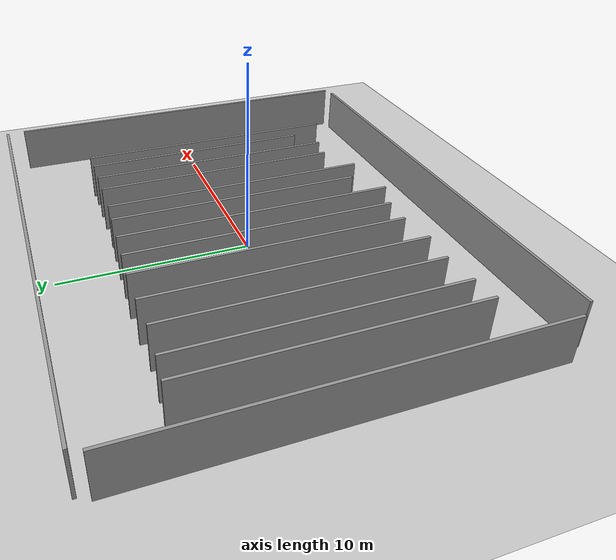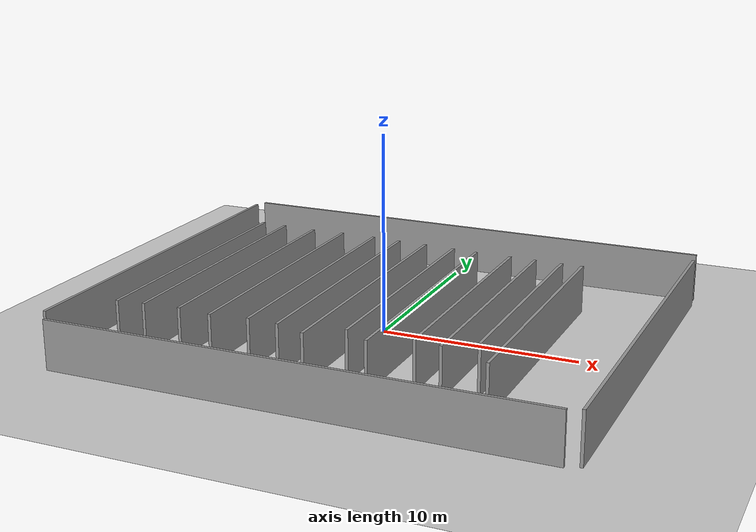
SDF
<sdf version="1.6">
 <world name="default">
  <model name="ground_plane">
   <static>1</static>
   <link name="link">
    <collision name="collision">
     <geometry><plane><normal>0 0 1</normal><size>100 100</size></plane></geometry>
     <surface><friction><ode><mu>100</mu><mu2>50</mu2></ode></friction></surface>
    </collision>
    <visual name="visual">
     <cast_shadows>0</cast_shadows>
     <geometry><plane><normal>0 0 1</normal><size>100 100</size></plane></geometry>
     <material>
      <script><uri>file://media/materials/scripts/gazebo.material</uri><name>Gazebo/Grey</name></script>
     </material>
    </visual>
   </link>
  </model>
  <model name="room15">
   <pose>0.149288 0.057 0 0 -0 0</pose>
   <link name="Wall_0">
    <collision name="Wall_0_Collision">
     <geometry><box><size>25.75 0.15 2.5</size></box></geometry>
     <pose>0 0 1.25 0 -0 0</pose>
    </collision>
    <visual name="Wall_0_Visual">
     <pose>0 0 1.25 0 -0 0</pose>
     <geometry><box><size>25.75 0.15 2.5</size></box></geometry>
     <material>
      <script><uri>file://media/materials/scripts/gazebo.material</uri><name>Gazebo/Grey</name></script>
      <ambient>1 1 1 1</ambient>
     </material>
     <meta><layer>0</layer></meta>
    </visual>
    <pose>0.089731 10.8367 0 0 -0 0</pose>
   </link>
   <link name="Wall_10">
    <collision name="Wall_10_Collision">
     <geometry><box><size>14.25 0.15 2.5</size></box></geometry>
     <pose>0 0 1.25 0 -0 0</pose>
    </collision>
    <visual name="Wall_10_Visual">
     <pose>0 0 1.25 0 -0 0</pose>
     <geometry><box><size>14.25 0.15 2.5</size></box></geometry>
     <material>
      <script><uri>file://media/materials/scripts/gazebo.material</uri><name>Gazebo/Grey</name></script>
      <ambient>1 1 1 1</ambient>
     </material>
     <meta><layer>0</layer></meta>
    </visual>
    <pose>-9.40259 -0.099252 0 0 -0 -1.5708</pose>
   </link>
   <link name="Wall_12">
    <collision name="Wall_12_Collision">
     <geometry><box><size>14 0.15 2.5</size></box></geometry>
     <pose>0 0 1.25 0 -0 0</pose>
    </collision>
    <visual name="Wall_12_Visual">
     <pose>0 0 1.25 0 -0 0</pose>
     <geometry><box><size>14 0.15 2.5</size></box></geometry>
     <material>
      <script><uri>file://media/materials/scripts/gazebo.material</uri><name>Gazebo/Grey</name></script>
      <ambient>1 1 1 1</ambient>
     </material>
     <meta><layer>0</layer></meta>
    </visual>
    <pose>-7.55214 -0.066775 0 0 -0 -1.5708</pose>
   </link>
   <link name="Wall_14">
    <collision name="Wall_14_Collision">
     <geometry><box><size>14.25 0.15 2.5</size></box></geometry>
     <pose>0 0 1.25 0 -0 0</pose>
    </collision>
    <visual name="Wall_14_Visual">
     <pose>0 0 1.25 0 -0 0</pose>
     <geometry><box><size>14.25 0.15 2.5</size></box></geometry>
     <material>
      <script><uri>file://media/materials/scripts/gazebo.material</uri><name>Gazebo/Grey</name></script>
      <ambient>1 1 1 1</ambient>
     </material>
     <meta><layer>0</layer></meta>
    </visual>
    <pose>-5.79422 -0.122383 0 0 -0 -1.5708</pose>
   </link>
   <link name="Wall_16">
    <collision name="Wall_16_Collision">
     <geometry><box><size>14 0.15 2.5</size></box></geometry>
     <pose>0 0 1.25 0 -0 0</pose>
    </collision>
    <visual name="Wall_16_Visual">
     <pose>0 0 1.25 0 -0 0</pose>
     <geometry><box><size>14 0.15 2.5</size></box></geometry>
     <material>
      <script><uri>file://media/materials/scripts/gazebo.material</uri><name>Gazebo/Grey</name></script>
      <ambient>1 1 1 1</ambient>
     </material>
     <meta><layer>0</layer></meta>
    </visual>
    <pose>-3.89751 0.002617 0 0 -0 -1.5708</pose>
   </link>
   <link name="Wall_18">
    <collision name="Wall_18_Collision">
     <geometry><box><size>14 0.15 2.5</size></box></geometry>
     <pose>0 0 1.25 0 -0 0</pose>
    </collision>
    <visual name="Wall_18_Visual">
     <pose>0 0 1.25 0 -0 0</pose>
     <geometry><box><size>14 0.15 2.5</size></box></geometry>
     <material>
      <script><uri>file://media/materials/scripts/gazebo.material</uri><name>Gazebo/Grey</name></script>
      <ambient>1 1 1 1</ambient>
     </material>
     <meta><layer>0</layer></meta>
    </visual>
    <pose>-2.34776 -0.089905 0 0 -0 -1.5708</pose>
   </link>
   <link name="Wall_2">
    <collision name="Wall_2_Collision">
     <geometry><box><size>20.5 0.15 2.5</size></box></geometry>
     <pose>0 0 1.25 0 -0 0</pose>
    </collision>
    <visual name="Wall_2_Visual">
     <pose>0 0 1.25 0 -0 0</pose>
     <geometry><box><size>20.5 0.15 2.5</size></box></geometry>
     <material>
      <script><uri>file://media/materials/scripts/gazebo.material</uri><name>Gazebo/Grey</name></script>
      <ambient>1 1 1 1</ambient>
     </material>
     <meta><layer>0</layer></meta>
    </visual>
    <pose>13.011 -0.379188 0 0 -0 -1.5708</pose>
   </link>
   <link name="Wall_20">
    <collision name="Wall_20_Collision">
     <geometry><box><size>14.5 0.15 2.5</size></box></geometry>
     <pose>0 0 1.25 0 -0 0</pose>
    </collision>
    <visual name="Wall_20_Visual">
     <pose>0 0 1.25 0 -0 0</pose>
     <geometry><box><size>14.5 0.15 2.5</size></box></geometry>
     <material>
      <script><uri>file://media/materials/scripts/gazebo.material</uri><name>Gazebo/Grey</name></script>
      <ambient>1 1 1 1</ambient>
     </material>
     <meta><layer>0</layer></meta>
    </visual>
    <pose>-0.774876 -0.409297 0 0 -0 -1.5708</pose>
   </link>
   <link name="Wall_22">
    <collision name="Wall_22_Collision">
     <geometry><box><size>13.25 0.15 2.5</size></box></geometry>
     <pose>0 0 1.25 0 -0 0</pose>
    </collision>
    <visual name="Wall_22_Visual">
     <pose>0 0 1.25 0 -0 0</pose>
     <geometry><box><size>13.25 0.15 2.5</size></box></geometry>
     <material>
      <script><uri>file://media/materials/scripts/gazebo.material</uri><name>Gazebo/Grey</name></script>
      <ambient>1 1 1 1</ambient>
     </material>
     <meta><layer>0</layer></meta>
    </visual>
    <pose>0.867398 0.12318 0 0 -0 -1.5708</pose>
   </link>
   <link name="Wall_24">
    <collision name="Wall_24_Collision">
     <geometry><box><size>14 0.15 2.5</size></box></geometry>
     <pose>0 0 1.25 0 -0 0</pose>
    </collision>
    <visual name="Wall_24_Visual">
     <pose>0 0 1.25 0 -0 0</pose>
     <geometry><box><size>14 0.15 2.5</size></box></geometry>
     <material>
      <script><uri>file://media/materials/scripts/gazebo.material</uri><name>Gazebo/Grey</name></script>
      <ambient>1 1 1 1</ambient>
     </material>
     <meta><layer>0</layer></meta>
    </visual>
    <pose>2.20897 -0.344342 0 0 -0 -1.5708</pose>
   </link>
   <link name="Wall_26">
    <collision name="Wall_26_Collision">
     <geometry><box><size>13 0.15 2.5</size></box></geometry>
     <pose>0 0 1.25 0 -0 0</pose>
    </collision>
    <visual name="Wall_26_Visual">
     <pose>0 0 1.25 0 -0 0</pose>
     <geometry><box><size>13 0.15 2.5</size></box></geometry>
     <material>
      <script><uri>file://media/materials/scripts/gazebo.material</uri><name>Gazebo/Grey</name></script>
      <ambient>1 1 1 1</ambient>
     </material>
     <meta><layer>0</layer></meta>
    </visual>
    <pose>4.10568 0.132527 0 0 -0 -1.5708</pose>
   </link>
   <link name="Wall_28">
    <collision name="Wall_28_Collision">
     <geometry><box><size>13.25 0.15 2.5</size></box></geometry>
     <pose>0 0 1.25 0 -0 0</pose>
    </collision>
    <visual name="Wall_28_Visual">
     <pose>0 0 1.25 0 -0 0</pose>
     <geometry><box><size>13.25 0.15 2.5</size></box></geometry>
     <material>
      <script><uri>file://media/materials/scripts/gazebo.material</uri><name>Gazebo/Grey</name></script>
      <ambient>1 1 1 1</ambient>
     </material>
     <meta><layer>0</layer></meta>
    </visual>
    <pose>5.47039 -0.015603 0 0 -0 -1.5708</pose>
   </link>
   <link name="Wall_30">
    <collision name="Wall_30_Collision">
     <geometry><box><size>12.25 0.15 2.5</size></box></geometry>
     <pose>0 0 1.25 0 -0 0</pose>
    </collision>
    <visual name="Wall_30_Visual">
     <pose>0 0 1.25 0 -0 0</pose>
     <geometry><box><size>12.25 0.15 2.5</size></box></geometry>
     <material>
      <script><uri>file://media/materials/scripts/gazebo.material</uri><name>Gazebo/Grey</name></script>
      <ambient>1 1 1 1</ambient>
     </material>
     <meta><layer>0</layer></meta>
    </visual>
    <pose>6.90449 0.461266 0 0 -0 -1.5708</pose>
   </link>
   <link name="Wall_32">
    <collision name="Wall_32_Collision">
     <geometry><box><size>14.25 0.15 2.5</size></box></geometry>
     <pose>0 0 1.25 0 -0 0</pose>
    </collision>
    <visual name="Wall_32_Visual">
     <pose>0 0 1.25 0 -0 0</pose>
     <geometry><box><size>14.25 0.15 2.5</size></box></geometry>
     <material>
      <script><uri>file://media/materials/scripts/gazebo.material</uri><name>Gazebo/Grey</name></script>
      <ambient>1 1 1 1</ambient>
     </material>
     <meta><layer>0</layer></meta>
    </visual>
    <pose>7.99162 -0.515603 0 0 -0 -1.5708</pose>
   </link>
   <link name="Wall_4">
    <collision name="Wall_4_Collision">
     <geometry><box><size>24.75 0.15 2.5</size></box></geometry>
     <pose>0 0 1.25 0 -0 0</pose>
    </collision>
    <visual name="Wall_4_Visual">
     <pose>0 0 1.25 0 -0 0</pose>
     <geometry><box><size>24.75 0.15 2.5</size></box></geometry>
     <material>
      <script><uri>file://media/materials/scripts/gazebo.material</uri><name>Gazebo/Grey</name></script>
      <ambient>1 1 1 1</ambient>
     </material>
     <meta><layer>0</layer></meta>
    </visual>
    <pose>-0.006082 -10.8367 0 0 -0 3.14159</pose>
   </link>
   <link name="Wall_6">
    <collision name="Wall_6_Collision">
     <geometry><box><size>20.25 0.15 2.5</size></box></geometry>
     <pose>0 0 1.25 0 -0 0</pose>
    </collision>
    <visual name="Wall_6_Visual">
     <pose>0 0 1.25 0 -0 0</pose>
     <geometry><box><size>20.25 0.15 2.5</size></box></geometry>
     <material>
      <script><uri>file://media/materials/scripts/gazebo.material</uri><name>Gazebo/Grey</name></script>
      <ambient>1 1 1 1</ambient>
     </material>
     <meta><layer>0</layer></meta>
    </visual>
    <pose>-13.011 0.162163 0 0 -0 -1.5708</pose>
   </link>
   <link name="Wall_8">
    <collision name="Wall_8_Collision">
     <geometry><box><size>14.5 0.15 2.5</size></box></geometry>
     <pose>0 0 1.25 0 -0 0</pose>
    </collision>
    <visual name="Wall_8_Visual">
     <pose>0 0 1.25 0 -0 0</pose>
     <geometry><box><size>14.5 0.15 2.5</size></box></geometry>
     <material>
      <script><uri>file://media/materials/scripts/gazebo.material</uri><name>Gazebo/Grey</name></script>
      <ambient>1 1 1 1</ambient>
     </material>
     <meta><layer>0</layer></meta>
    </visual>
    <pose>-10.7904 -0.108599 0 0 -0 -1.5708</pose>
   </link>
   <static>1</static>
  </model>
  <model name="cabinet_29">
   <static>1</static>
   <link name="cabinet_bottom_plate">
    <inertial>
     <pose>0 0 -1 0 -0 0</pose>
     <inertia><ixx>2.05</ixx><ixy>0</ixy><ixz>0</ixz><iyy>2.05</iyy><iyz>0</iyz><izz>2.05</izz></inertia>
     <mass>25</mass>
    </inertial>
    <collision name="cabinet_bottom_plate_geom">
     <pose>0 0 0.01 0 -0 0</pose>
     <geometry><box><size>0.45 0.45 0.02</size></box></geometry>
    </collision>
    <visual name="cabinet_bottom_plate_geom_visual">
     <pose>0 0 0.01 0 -0 0</pose>
     <geometry><box><size>0.45 0.45 0.02</size></box></geometry>
     <material>
      <script><uri>file://media/materials/scripts/gazebo.material</uri><name>Gazebo/Wood</name></script>
     </material>
    </visual>
    <collision name="cabinet_bottom_plate_geom_cabinet_back_plate">
     <pose>0.235 0 0.51 0 -0 0</pose>
     <geometry><box><size>0.02 0.45 1.02</size></box></geometry>
    </collision>
    <visual name="cabinet_bottom_plate_geom_cabinet_back_plate_visual">
     <pose>0.235 0 0.51 0 -0 0</pose>
     <geometry><box><size>0.02 0.45 1.02</size></box></geometry>
     <material>
      <script><uri>file://media/materials/scripts/gazebo.material</uri><name>Gazebo/Wood</name></script>
     </material>
    </visual>
    <collision name="cabinet_bottom_plate_geom_cabinet_left_plate">
     <pose>0 0.235 0.51 0 -0 0</pose>
     <geometry><box><size>0.45 0.02 1.02</size></box></geometry>
    </collision>
    <visual name="cabinet_bottom_plate_geom_cabinet_left_plate_visual">
     <pose>0 0.235 0.51 0 -0 0</pose>
     <geometry><box><size>0.45 0.02 1.02</size></box></geometry>
     <material>
      <script><uri>file://media/materials/scripts/gazebo.material</uri><name>Gazebo/Wood</name></script>
     </material>
    </visual>
    <collision name="cabinet_bottom_plate_geom_cabinet_middle_plate">
     <pose>0 0 0.51 0 -0 0</pose>
     <geometry><box><size>0.45 0.45 0.02</size></box></geometry>
    </collision>
    <visual name="cabinet_bottom_plate_geom_cabinet_middle_plate_visual">
     <pose>0 0 0.51 0 -0 0</pose>
     <geometry><box><size>0.45 0.45 0.02</size></box></geometry>
     <material>
      <script><uri>file://media/materials/scripts/gazebo.material</uri><name>Gazebo/Wood</name></script>
     </material>
    </visual>
    <collision name="cabinet_bottom_plate_geom_cabinet_right_plate">
     <pose>0 -0.235 0.51 0 -0 0</pose>
     <geometry><box><size>0.45 0.02 1.02</size></box></geometry>
    </collision>
    <visual name="cabinet_bottom_plate_geom_cabinet_right_plate_visual">
     <pose>0 -0.235 0.51 0 -0 0</pose>
     <geometry><box><size>0.45 0.02 1.02</size></box></geometry>
     <material>
      <script><uri>file://media/materials/scripts/gazebo.material</uri><name>Gazebo/Wood</name></script>
     </material>
    </visual>
    <collision name="cabinet_bottom_plate_geom_cabinet_top_plate">
     <pose>0 0 1.01 0 -0 0</pose>
     <geometry><box><size>0.45 0.45 0.02</size></box></geometry>
    </collision>
    <visual name="cabinet_bottom_plate_geom_cabinet_top_plate_visual">
     <pose>0 0 1.01 0 -0 0</pose>
     <geometry><box><size>0.45 0.45 0.02</size></box></geometry>
     <material>
      <script><uri>file://media/materials/scripts/gazebo.material</uri><name>Gazebo/Wood</name></script>
     </material>
    </visual>
   </link>
   <pose>-2.75456 -5.34135 0 0 -0 0</pose>
  </model>
  <model name="cabinet_30">
   <static>1</static>
   <link name="cabinet_bottom_plate">
    <inertial>
     <pose>0 0 -1 0 -0 0</pose>
     <inertia><ixx>2.05</ixx><ixy>0</ixy><ixz>0</ixz><iyy>2.05</iyy><iyz>0</iyz><izz>2.05</izz></inertia>
     <mass>25</mass>
    </inertial>
    <collision name="cabinet_bottom_plate_geom">
     <pose>0 0 0.01 0 -0 0</pose>
     <geometry><box><size>0.45 0.45 0.02</size></box></geometry>
    </collision>
    <visual name="cabinet_bottom_plate_geom_visual">
     <pose>0 0 0.01 0 -0 0</pose>
     <geometry><box><size>0.45 0.45 0.02</size></box></geometry>
     <material>
      <script><uri>file://media/materials/scripts/gazebo.material</uri><name>Gazebo/Wood</name></script>
     </material>
    </visual>
    <collision name="cabinet_bottom_plate_geom_cabinet_back_plate">
     <pose>0.235 0 0.51 0 -0 0</pose>
     <geometry><box><size>0.02 0.45 1.02</size></box></geometry>
    </collision>
    <visual name="cabinet_bottom_plate_geom_cabinet_back_plate_visual">
     <pose>0.235 0 0.51 0 -0 0</pose>
     <geometry><box><size>0.02 0.45 1.02</size></box></geometry>
     <material>
      <script><uri>file://media/materials/scripts/gazebo.material</uri><name>Gazebo/Wood</name></script>
     </material>
    </visual>
    <collision name="cabinet_bottom_plate_geom_cabinet_left_plate">
     <pose>0 0.235 0.51 0 -0 0</pose>
     <geometry><box><size>0.45 0.02 1.02</size></box></geometry>
    </collision>
    <visual name="cabinet_bottom_plate_geom_cabinet_left_plate_visual">
     <pose>0 0.235 0.51 0 -0 0</pose>
     <geometry><box><size>0.45 0.02 1.02</size></box></geometry>
     <material>
      <script><uri>file://media/materials/scripts/gazebo.material</uri><name>Gazebo/Wood</name></script>
     </material>
    </visual>
    <collision name="cabinet_bottom_plate_geom_cabinet_middle_plate">
     <pose>0 0 0.51 0 -0 0</pose>
     <geometry><box><size>0.45 0.45 0.02</size></box></geometry>
    </collision>
    <visual name="cabinet_bottom_plate_geom_cabinet_middle_plate_visual">
     <pose>0 0 0.51 0 -0 0</pose>
     <geometry><box><size>0.45 0.45 0.02</size></box></geometry>
     <material>
      <script><uri>file://media/materials/scripts/gazebo.material</uri><name>Gazebo/Wood</name></script>
     </material>
    </visual>
    <collision name="cabinet_bottom_plate_geom_cabinet_right_plate">
     <pose>0 -0.235 0.51 0 -0 0</pose>
     <geometry><box><size>0.45 0.02 1.02</size></box></geometry>
    </collision>
    <visual name="cabinet_bottom_plate_geom_cabinet_right_plate_visual">
     <pose>0 -0.235 0.51 0 -0 0</pose>
     <geometry><box><size>0.45 0.02 1.02</size></box></geometry>
     <material>
      <script><uri>file://media/materials/scripts/gazebo.material</uri><name>Gazebo/Wood</name></script>
     </material>
    </visual>
    <collision name="cabinet_bottom_plate_geom_cabinet_top_plate">
     <pose>0 0 1.01 0 -0 0</pose>
     <geometry><box><size>0.45 0.45 0.02</size></box></geometry>
    </collision>
    <visual name="cabinet_bottom_plate_geom_cabinet_top_plate_visual">
     <pose>0 0 1.01 0 -0 0</pose>
     <geometry><box><size>0.45 0.45 0.02</size></box></geometry>
     <material>
      <script><uri>file://media/materials/scripts/gazebo.material</uri><name>Gazebo/Wood</name></script>
     </material>
    </visual>
   </link>
   <pose>-2.64081 -3.83503 0 0 -0 0</pose>
  </model>
  <model name="cabinet_31">
   <static>1</static>
   <link name="cabinet_bottom_plate">
    <inertial>
     <pose>0 0 -1 0 -0 0</pose>
     <inertia><ixx>2.05</ixx><ixy>0</ixy><ixz>0</ixz><iyy>2.05</iyy><iyz>0</iyz><izz>2.05</izz></inertia>
     <mass>25</mass>
    </inertial>
    <collision name="cabinet_bottom_plate_geom">
     <pose>0 0 0.01 0 -0 0</pose>
     <geometry><box><size>0.45 0.45 0.02</size></box></geometry>
    </collision>
    <visual name="cabinet_bottom_plate_geom_visual">
     <pose>0 0 0.01 0 -0 0</pose>
     <geometry><box><size>0.45 0.45 0.02</size></box></geometry>
     <material>
      <script><uri>file://media/materials/scripts/gazebo.material</uri><name>Gazebo/Wood</name></script>
     </material>
    </visual>
    <collision name="cabinet_bottom_plate_geom_cabinet_back_plate">
     <pose>0.235 0 0.51 0 -0 0</pose>
     <geometry><box><size>0.02 0.45 1.02</size></box></geometry>
    </collision>
    <visual name="cabinet_bottom_plate_geom_cabinet_back_plate_visual">
     <pose>0.235 0 0.51 0 -0 0</pose>
     <geometry><box><size>0.02 0.45 1.02</size></box></geometry>
     <material>
      <script><uri>file://media/materials/scripts/gazebo.material</uri><name>Gazebo/Wood</name></script>
     </material>
    </visual>
    <collision name="cabinet_bottom_plate_geom_cabinet_left_plate">
     <pose>0 0.235 0.51 0 -0 0</pose>
     <geometry><box><size>0.45 0.02 1.02</size></box></geometry>
    </collision>
    <visual name="cabinet_bottom_plate_geom_cabinet_left_plate_visual">
     <pose>0 0.235 0.51 0 -0 0</pose>
     <geometry><box><size>0.45 0.02 1.02</size></box></geometry>
     <material>
      <script><uri>file://media/materials/scripts/gazebo.material</uri><name>Gazebo/Wood</name></script>
     </material>
    </visual>
    <collision name="cabinet_bottom_plate_geom_cabinet_middle_plate">
     <pose>0 0 0.51 0 -0 0</pose>
     <geometry><box><size>0.45 0.45 0.02</size></box></geometry>
    </collision>
    <visual name="cabinet_bottom_plate_geom_cabinet_middle_plate_visual">
     <pose>0 0 0.51 0 -0 0</pose>
     <geometry><box><size>0.45 0.45 0.02</size></box></geometry>
     <material>
      <script><uri>file://media/materials/scripts/gazebo.material</uri><name>Gazebo/Wood</name></script>
     </material>
    </visual>
    <collision name="cabinet_bottom_plate_geom_cabinet_right_plate">
     <pose>0 -0.235 0.51 0 -0 0</pose>
     <geometry><box><size>0.45 0.02 1.02</size></box></geometry>
    </collision>
    <visual name="cabinet_bottom_plate_geom_cabinet_right_plate_visual">
     <pose>0 -0.235 0.51 0 -0 0</pose>
     <geometry><box><size>0.45 0.02 1.02</size></box></geometry>
     <material>
      <script><uri>file://media/materials/scripts/gazebo.material</uri><name>Gazebo/Wood</name></script>
     </material>
    </visual>
    <collision name="cabinet_bottom_plate_geom_cabinet_top_plate">
     <pose>0 0 1.01 0 -0 0</pose>
     <geometry><box><size>0.45 0.45 0.02</size></box></geometry>
    </collision>
    <visual name="cabinet_bottom_plate_geom_cabinet_top_plate_visual">
     <pose>0 0 1.01 0 -0 0</pose>
     <geometry><box><size>0.45 0.45 0.02</size></box></geometry>
     <material>
      <script><uri>file://media/materials/scripts/gazebo.material</uri><name>Gazebo/Wood</name></script>
     </material>
    </visual>
   </link>
   <pose>-2.62734 -1.86956 0 0 -0 0</pose>
  </model>
  <model name="cabinet_32">
   <static>1</static>
   <link name="cabinet_bottom_plate">
    <inertial>
     <pose>0 0 -1 0 -0 0</pose>
     <inertia><ixx>2.05</ixx><ixy>0</ixy><ixz>0</ixz><iyy>2.05</iyy><iyz>0</iyz><izz>2.05</izz></inertia>
     <mass>25</mass>
    </inertial>
    <collision name="cabinet_bottom_plate_geom">
     <pose>0 0 0.01 0 -0 0</pose>
     <geometry><box><size>0.45 0.45 0.02</size></box></geometry>
    </collision>
    <visual name="cabinet_bottom_plate_geom_visual">
     <pose>0 0 0.01 0 -0 0</pose>
     <geometry><box><size>0.45 0.45 0.02</size></box></geometry>
     <material>
      <script><uri>file://media/materials/scripts/gazebo.material</uri><name>Gazebo/Wood</name></script>
     </material>
    </visual>
    <collision name="cabinet_bottom_plate_geom_cabinet_back_plate">
     <pose>0.235 0 0.51 0 -0 0</pose>
     <geometry><box><size>0.02 0.45 1.02</size></box></geometry>
    </collision>
    <visual name="cabinet_bottom_plate_geom_cabinet_back_plate_visual">
     <pose>0.235 0 0.51 0 -0 0</pose>
     <geometry><box><size>0.02 0.45 1.02</size></box></geometry>
     <material>
      <script><uri>file://media/materials/scripts/gazebo.material</uri><name>Gazebo/Wood</name></script>
     </material>
    </visual>
    <collision name="cabinet_bottom_plate_geom_cabinet_left_plate">
     <pose>0 0.235 0.51 0 -0 0</pose>
     <geometry><box><size>0.45 0.02 1.02</size></box></geometry>
    </collision>
    <visual name="cabinet_bottom_plate_geom_cabinet_left_plate_visual">
     <pose>0 0.235 0.51 0 -0 0</pose>
     <geometry><box><size>0.45 0.02 1.02</size></box></geometry>
     <material>
      <script><uri>file://media/materials/scripts/gazebo.material</uri><name>Gazebo/Wood</name></script>
     </material>
    </visual>
    <collision name="cabinet_bottom_plate_geom_cabinet_middle_plate">
     <pose>0 0 0.51 0 -0 0</pose>
     <geometry><box><size>0.45 0.45 0.02</size></box></geometry>
    </collision>
    <visual name="cabinet_bottom_plate_geom_cabinet_middle_plate_visual">
     <pose>0 0 0.51 0 -0 0</pose>
     <geometry><box><size>0.45 0.45 0.02</size></box></geometry>
     <material>
      <script><uri>file://media/materials/scripts/gazebo.material</uri><name>Gazebo/Wood</name></script>
     </material>
    </visual>
    <collision name="cabinet_bottom_plate_geom_cabinet_right_plate">
     <pose>0 -0.235 0.51 0 -0 0</pose>
     <geometry><box><size>0.45 0.02 1.02</size></box></geometry>
    </collision>
    <visual name="cabinet_bottom_plate_geom_cabinet_right_plate_visual">
     <pose>0 -0.235 0.51 0 -0 0</pose>
     <geometry><box><size>0.45 0.02 1.02</size></box></geometry>
     <material>
      <script><uri>file://media/materials/scripts/gazebo.material</uri><name>Gazebo/Wood</name></script>
     </material>
    </visual>
    <collision name="cabinet_bottom_plate_geom_cabinet_top_plate">
     <pose>0 0 1.01 0 -0 0</pose>
     <geometry><box><size>0.45 0.45 0.02</size></box></geometry>
    </collision>
    <visual name="cabinet_bottom_plate_geom_cabinet_top_plate_visual">
     <pose>0 0 1.01 0 -0 0</pose>
     <geometry><box><size>0.45 0.45 0.02</size></box></geometry>
     <material>
      <script><uri>file://media/materials/scripts/gazebo.material</uri><name>Gazebo/Wood</name></script>
     </material>
    </visual>
   </link>
   <pose>-3.28527 -0.3238 0 0 -0 0</pose>
  </model>
  <model name="cabinet_34">
   <static>1</static>
   <link name="cabinet_bottom_plate">
    <inertial>
     <pose>0 0 -1 0 -0 0</pose>
     <inertia><ixx>2.05</ixx><ixy>0</ixy><ixz>0</ixz><iyy>2.05</iyy><iyz>0</iyz><izz>2.05</izz></inertia>
     <mass>25</mass>
    </inertial>
    <collision name="cabinet_bottom_plate_geom">
     <pose>0 0 0.01 0 -0 0</pose>
     <geometry><box><size>0.45 0.45 0.02</size></box></geometry>
    </collision>
    <visual name="cabinet_bottom_plate_geom_visual">
     <pose>0 0 0.01 0 -0 0</pose>
     <geometry><box><size>0.45 0.45 0.02</size></box></geometry>
     <material>
      <script><uri>file://media/materials/scripts/gazebo.material</uri><name>Gazebo/Wood</name></script>
     </material>
    </visual>
    <collision name="cabinet_bottom_plate_geom_cabinet_back_plate">
     <pose>0.235 0 0.51 0 -0 0</pose>
     <geometry><box><size>0.02 0.45 1.02</size></box></geometry>
    </collision>
    <visual name="cabinet_bottom_plate_geom_cabinet_back_plate_visual">
     <pose>0.235 0 0.51 0 -0 0</pose>
     <geometry><box><size>0.02 0.45 1.02</size></box></geometry>
     <material>
      <script><uri>file://media/materials/scripts/gazebo.material</uri><name>Gazebo/Wood</name></script>
     </material>
    </visual>
    <collision name="cabinet_bottom_plate_geom_cabinet_left_plate">
     <pose>0 0.235 0.51 0 -0 0</pose>
     <geometry><box><size>0.45 0.02 1.02</size></box></geometry>
    </collision>
    <visual name="cabinet_bottom_plate_geom_cabinet_left_plate_visual">
     <pose>0 0.235 0.51 0 -0 0</pose>
     <geometry><box><size>0.45 0.02 1.02</size></box></geometry>
     <material>
      <script><uri>file://media/materials/scripts/gazebo.material</uri><name>Gazebo/Wood</name></script>
     </material>
    </visual>
    <collision name="cabinet_bottom_plate_geom_cabinet_middle_plate">
     <pose>0 0 0.51 0 -0 0</pose>
     <geometry><box><size>0.45 0.45 0.02</size></box></geometry>
    </collision>
    <visual name="cabinet_bottom_plate_geom_cabinet_middle_plate_visual">
     <pose>0 0 0.51 0 -0 0</pose>
     <geometry><box><size>0.45 0.45 0.02</size></box></geometry>
     <material>
      <script><uri>file://media/materials/scripts/gazebo.material</uri><name>Gazebo/Wood</name></script>
     </material>
    </visual>
    <collision name="cabinet_bottom_plate_geom_cabinet_right_plate">
     <pose>0 -0.235 0.51 0 -0 0</pose>
     <geometry><box><size>0.45 0.02 1.02</size></box></geometry>
    </collision>
    <visual name="cabinet_bottom_plate_geom_cabinet_right_plate_visual">
     <pose>0 -0.235 0.51 0 -0 0</pose>
     <geometry><box><size>0.45 0.02 1.02</size></box></geometry>
     <material>
      <script><uri>file://media/materials/scripts/gazebo.material</uri><name>Gazebo/Wood</name></script>
     </material>
    </visual>
    <collision name="cabinet_bottom_plate_geom_cabinet_top_plate">
     <pose>0 0 1.01 0 -0 0</pose>
     <geometry><box><size>0.45 0.45 0.02</size></box></geometry>
    </collision>
    <visual name="cabinet_bottom_plate_geom_cabinet_top_plate_visual">
     <pose>0 0 1.01 0 -0 0</pose>
     <geometry><box><size>0.45 0.45 0.02</size></box></geometry>
     <material>
      <script><uri>file://media/materials/scripts/gazebo.material</uri><name>Gazebo/Wood</name></script>
     </material>
    </visual>
   </link>
   <pose>-1.02027 -5.2669 0 0 -0 0</pose>
  </model>
  <model name="cabinet_35">
   <static>1</static>
   <link name="cabinet_bottom_plate">
    <inertial>
     <pose>0 0 -1 0 -0 0</pose>
     <inertia><ixx>2.05</ixx><ixy>0</ixy><ixz>0</ixz><iyy>2.05</iyy><iyz>0</iyz><izz>2.05</izz></inertia>
     <mass>25</mass>
    </inertial>
    <collision name="cabinet_bottom_plate_geom">
     <pose>0 0 0.01 0 -0 0</pose>
     <geometry><box><size>0.45 0.45 0.02</size></box></geometry>
    </collision>
    <visual name="cabinet_bottom_plate_geom_visual">
     <pose>0 0 0.01 0 -0 0</pose>
     <geometry><box><size>0.45 0.45 0.02</size></box></geometry>
     <material>
      <script><uri>file://media/materials/scripts/gazebo.material</uri><name>Gazebo/Wood</name></script>
     </material>
    </visual>
    <collision name="cabinet_bottom_plate_geom_cabinet_back_plate">
     <pose>0.235 0 0.51 0 -0 0</pose>
     <geometry><box><size>0.02 0.45 1.02</size></box></geometry>
    </collision>
    <visual name="cabinet_bottom_plate_geom_cabinet_back_plate_visual">
     <pose>0.235 0 0.51 0 -0 0</pose>
     <geometry><box><size>0.02 0.45 1.02</size></box></geometry>
     <material>
      <script><uri>file://media/materials/scripts/gazebo.material</uri><name>Gazebo/Wood</name></script>
     </material>
    </visual>
    <collision name="cabinet_bottom_plate_geom_cabinet_left_plate">
     <pose>0 0.235 0.51 0 -0 0</pose>
     <geometry><box><size>0.45 0.02 1.02</size></box></geometry>
    </collision>
    <visual name="cabinet_bottom_plate_geom_cabinet_left_plate_visual">
     <pose>0 0.235 0.51 0 -0 0</pose>
     <geometry><box><size>0.45 0.02 1.02</size></box></geometry>
     <material>
      <script><uri>file://media/materials/scripts/gazebo.material</uri><name>Gazebo/Wood</name></script>
     </material>
    </visual>
    <collision name="cabinet_bottom_plate_geom_cabinet_middle_plate">
     <pose>0 0 0.51 0 -0 0</pose>
     <geometry><box><size>0.45 0.45 0.02</size></box></geometry>
    </collision>
    <visual name="cabinet_bottom_plate_geom_cabinet_middle_plate_visual">
     <pose>0 0 0.51 0 -0 0</pose>
     <geometry><box><size>0.45 0.45 0.02</size></box></geometry>
     <material>
      <script><uri>file://media/materials/scripts/gazebo.material</uri><name>Gazebo/Wood</name></script>
     </material>
    </visual>
    <collision name="cabinet_bottom_plate_geom_cabinet_right_plate">
     <pose>0 -0.235 0.51 0 -0 0</pose>
     <geometry><box><size>0.45 0.02 1.02</size></box></geometry>
    </collision>
    <visual name="cabinet_bottom_plate_geom_cabinet_right_plate_visual">
     <pose>0 -0.235 0.51 0 -0 0</pose>
     <geometry><box><size>0.45 0.02 1.02</size></box></geometry>
     <material>
      <script><uri>file://media/materials/scripts/gazebo.material</uri><name>Gazebo/Wood</name></script>
     </material>
    </visual>
    <collision name="cabinet_bottom_plate_geom_cabinet_top_plate">
     <pose>0 0 1.01 0 -0 0</pose>
     <geometry><box><size>0.45 0.45 0.02</size></box></geometry>
    </collision>
    <visual name="cabinet_bottom_plate_geom_cabinet_top_plate_visual">
     <pose>0 0 1.01 0 -0 0</pose>
     <geometry><box><size>0.45 0.45 0.02</size></box></geometry>
     <material>
      <script><uri>file://media/materials/scripts/gazebo.material</uri><name>Gazebo/Wood</name></script>
     </material>
    </visual>
   </link>
   <pose>-1.07996 -3.3048 0 0 -0 0</pose>
  </model>
  <model name="cabinet_36">
   <static>1</static>
   <link name="cabinet_bottom_plate">
    <inertial>
     <pose>0 0 -1 0 -0 0</pose>
     <inertia><ixx>2.05</ixx><ixy>0</ixy><ixz>0</ixz><iyy>2.05</iyy><iyz>0</iyz><izz>2.05</izz></inertia>
     <mass>25</mass>
    </inertial>
    <collision name="cabinet_bottom_plate_geom">
     <pose>0 0 0.01 0 -0 0</pose>
     <geometry><box><size>0.45 0.45 0.02</size></box></geometry>
    </collision>
    <visual name="cabinet_bottom_plate_geom_visual">
     <pose>0 0 0.01 0 -0 0</pose>
     <geometry><box><size>0.45 0.45 0.02</size></box></geometry>
     <material>
      <script><uri>file://media/materials/scripts/gazebo.material</uri><name>Gazebo/Wood</name></script>
     </material>
    </visual>
    <collision name="cabinet_bottom_plate_geom_cabinet_back_plate">
     <pose>0.235 0 0.51 0 -0 0</pose>
     <geometry><box><size>0.02 0.45 1.02</size></box></geometry>
    </collision>
    <visual name="cabinet_bottom_plate_geom_cabinet_back_plate_visual">
     <pose>0.235 0 0.51 0 -0 0</pose>
     <geometry><box><size>0.02 0.45 1.02</size></box></geometry>
     <material>
      <script><uri>file://media/materials/scripts/gazebo.material</uri><name>Gazebo/Wood</name></script>
     </material>
    </visual>
    <collision name="cabinet_bottom_plate_geom_cabinet_left_plate">
     <pose>0 0.235 0.51 0 -0 0</pose>
     <geometry><box><size>0.45 0.02 1.02</size></box></geometry>
    </collision>
    <visual name="cabinet_bottom_plate_geom_cabinet_left_plate_visual">
     <pose>0 0.235 0.51 0 -0 0</pose>
     <geometry><box><size>0.45 0.02 1.02</size></box></geometry>
     <material>
      <script><uri>file://media/materials/scripts/gazebo.material</uri><name>Gazebo/Wood</name></script>
     </material>
    </visual>
    <collision name="cabinet_bottom_plate_geom_cabinet_middle_plate">
     <pose>0 0 0.51 0 -0 0</pose>
     <geometry><box><size>0.45 0.45 0.02</size></box></geometry>
    </collision>
    <visual name="cabinet_bottom_plate_geom_cabinet_middle_plate_visual">
     <pose>0 0 0.51 0 -0 0</pose>
     <geometry><box><size>0.45 0.45 0.02</size></box></geometry>
     <material>
      <script><uri>file://media/materials/scripts/gazebo.material</uri><name>Gazebo/Wood</name></script>
     </material>
    </visual>
    <collision name="cabinet_bottom_plate_geom_cabinet_right_plate">
     <pose>0 -0.235 0.51 0 -0 0</pose>
     <geometry><box><size>0.45 0.02 1.02</size></box></geometry>
    </collision>
    <visual name="cabinet_bottom_plate_geom_cabinet_right_plate_visual">
     <pose>0 -0.235 0.51 0 -0 0</pose>
     <geometry><box><size>0.45 0.02 1.02</size></box></geometry>
     <material>
      <script><uri>file://media/materials/scripts/gazebo.material</uri><name>Gazebo/Wood</name></script>
     </material>
    </visual>
    <collision name="cabinet_bottom_plate_geom_cabinet_top_plate">
     <pose>0 0 1.01 0 -0 0</pose>
     <geometry><box><size>0.45 0.45 0.02</size></box></geometry>
    </collision>
    <visual name="cabinet_bottom_plate_geom_cabinet_top_plate_visual">
     <pose>0 0 1.01 0 -0 0</pose>
     <geometry><box><size>0.45 0.45 0.02</size></box></geometry>
     <material>
      <script><uri>file://media/materials/scripts/gazebo.material</uri><name>Gazebo/Wood</name></script>
     </material>
    </visual>
   </link>
   <pose>-1.05196 -1.69592 0 0 -0 0</pose>
  </model>
  <model name="cabinet_37">
   <static>1</static>
   <link name="cabinet_bottom_plate">
    <inertial>
     <pose>0 0 -1 0 -0 0</pose>
     <inertia><ixx>2.05</ixx><ixy>0</ixy><ixz>0</ixz><iyy>2.05</iyy><iyz>0</iyz><izz>2.05</izz></inertia>
     <mass>25</mass>
    </inertial>
    <collision name="cabinet_bottom_plate_geom">
     <pose>0 0 0.01 0 -0 0</pose>
     <geometry><box><size>0.45 0.45 0.02</size></box></geometry>
    </collision>
    <visual name="cabinet_bottom_plate_geom_visual">
     <pose>0 0 0.01 0 -0 0</pose>
     <geometry><box><size>0.45 0.45 0.02</size></box></geometry>
     <material>
      <script><uri>file://media/materials/scripts/gazebo.material</uri><name>Gazebo/Wood</name></script>
     </material>
    </visual>
    <collision name="cabinet_bottom_plate_geom_cabinet_back_plate">
     <pose>0.235 0 0.51 0 -0 0</pose>
     <geometry><box><size>0.02 0.45 1.02</size></box></geometry>
    </collision>
    <visual name="cabinet_bottom_plate_geom_cabinet_back_plate_visual">
     <pose>0.235 0 0.51 0 -0 0</pose>
     <geometry><box><size>0.02 0.45 1.02</size></box></geometry>
     <material>
      <script><uri>file://media/materials/scripts/gazebo.material</uri><name>Gazebo/Wood</name></script>
     </material>
    </visual>
    <collision name="cabinet_bottom_plate_geom_cabinet_left_plate">
     <pose>0 0.235 0.51 0 -0 0</pose>
     <geometry><box><size>0.45 0.02 1.02</size></box></geometry>
    </collision>
    <visual name="cabinet_bottom_plate_geom_cabinet_left_plate_visual">
     <pose>0 0.235 0.51 0 -0 0</pose>
     <geometry><box><size>0.45 0.02 1.02</size></box></geometry>
     <material>
      <script><uri>file://media/materials/scripts/gazebo.material</uri><name>Gazebo/Wood</name></script>
     </material>
    </visual>
    <collision name="cabinet_bottom_plate_geom_cabinet_middle_plate">
     <pose>0 0 0.51 0 -0 0</pose>
     <geometry><box><size>0.45 0.45 0.02</size></box></geometry>
    </collision>
    <visual name="cabinet_bottom_plate_geom_cabinet_middle_plate_visual">
     <pose>0 0 0.51 0 -0 0</pose>
     <geometry><box><size>0.45 0.45 0.02</size></box></geometry>
     <material>
      <script><uri>file://media/materials/scripts/gazebo.material</uri><name>Gazebo/Wood</name></script>
     </material>
    </visual>
    <collision name="cabinet_bottom_plate_geom_cabinet_right_plate">
     <pose>0 -0.235 0.51 0 -0 0</pose>
     <geometry><box><size>0.45 0.02 1.02</size></box></geometry>
    </collision>
    <visual name="cabinet_bottom_plate_geom_cabinet_right_plate_visual">
     <pose>0 -0.235 0.51 0 -0 0</pose>
     <geometry><box><size>0.45 0.02 1.02</size></box></geometry>
     <material>
      <script><uri>file://media/materials/scripts/gazebo.material</uri><name>Gazebo/Wood</name></script>
     </material>
    </visual>
    <collision name="cabinet_bottom_plate_geom_cabinet_top_plate">
     <pose>0 0 1.01 0 -0 0</pose>
     <geometry><box><size>0.45 0.45 0.02</size></box></geometry>
    </collision>
    <visual name="cabinet_bottom_plate_geom_cabinet_top_plate_visual">
     <pose>0 0 1.01 0 -0 0</pose>
     <geometry><box><size>0.45 0.45 0.02</size></box></geometry>
     <material>
      <script><uri>file://media/materials/scripts/gazebo.material</uri><name>Gazebo/Wood</name></script>
     </material>
    </visual>
   </link>
   <pose>-1.85421 -0.474709 0 0 -0 0</pose>
  </model>
 </world>
</sdf>
